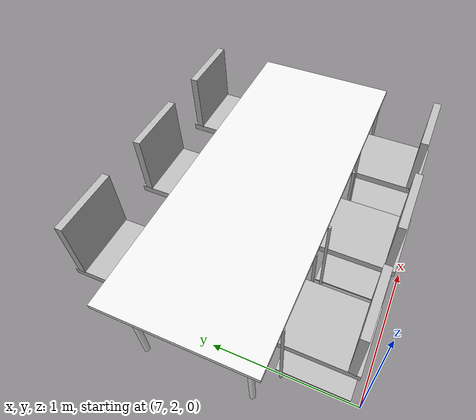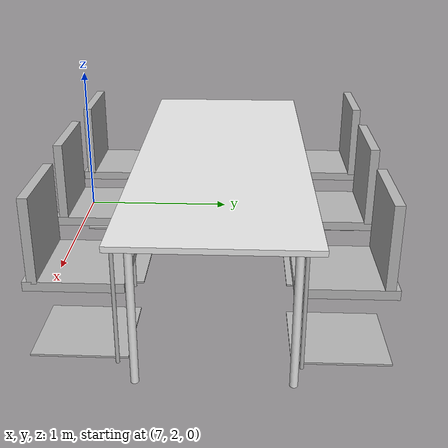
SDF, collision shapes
<sdf version="1.6">
 <model name="erica">
  <model name="table1_chair_clone_0">
   <model name="h_chair">
    <link name="link_0">
     <inertial>
      <mass>1</mass>
      <inertia>
       <ixx>0.166667</ixx>
       <ixy>0</ixy>
       <ixz>0</ixz>
       <iyy>0.166667</iyy>
       <iyz>0</iyz>
       <izz>0.166667</izz>
      </inertia>
     </inertial>
     <visual name="visual">
      <geometry>
       <mesh><uri>model://erica/elements/h_chair/meshes/chair.dae</uri><scale>1 1 1</scale></mesh>
      </geometry>
     </visual>
     <collision name="collision_4">
      <pose>0 0 0.41 0 -0 0</pose>
      <geometry><box><size>0.5 0.45 0.05</size></box></geometry>
      <surface>
       <friction>
        <ode><mu>1</mu><mu2>1</mu2><fdir1>0 0 0</fdir1><slip1>0</slip1><slip2>0</slip2></ode>
        <torsional>
         <coefficient>1</coefficient>
         <patch_radius>0</patch_radius>
         <surface_radius>0</surface_radius>
         <use_patch_radius>1</use_patch_radius>
         <ode><slip>0</slip></ode>
        </torsional>
       </friction>
       <bounce><restitution_coefficient>0</restitution_coefficient><threshold>1e+06</threshold></bounce>
       <contact>
        <collide_without_contact>0</collide_without_contact>
        <collide_without_contact_bitmask>1</collide_without_contact_bitmask>
        <collide_bitmask>1</collide_bitmask>
        <ode>
         <soft_cfm>0</soft_cfm>
         <soft_erp>0.2</soft_erp>
         <kp>1e+13</kp>
         <kd>1</kd>
         <max_vel>0.01</max_vel>
         <min_depth>0</min_depth>
        </ode>
        <bullet>
         <split_impulse>1</split_impulse>
         <split_impulse_penetration_threshold>-0.01</split_impulse_penetration_threshold>
         <soft_cfm>0</soft_cfm>
         <soft_erp>0.2</soft_erp>
         <kp>1e+13</kp>
         <kd>1</kd>
        </bullet>
       </contact>
      </surface>
     </collision>
     <collision name="collision_3">
      <pose>0 0 0.01 0 -0 0</pose>
      <geometry><box><size>0.5 0.45 0.01</size></box></geometry>
      <surface>
       <friction>
        <ode><mu>1</mu><mu2>1</mu2><fdir1>0 0 0</fdir1><slip1>0</slip1><slip2>0</slip2></ode>
        <torsional>
         <coefficient>1</coefficient>
         <patch_radius>0</patch_radius>
         <surface_radius>0</surface_radius>
         <use_patch_radius>1</use_patch_radius>
         <ode><slip>0</slip></ode>
        </torsional>
       </friction>
       <bounce><restitution_coefficient>0</restitution_coefficient><threshold>1e+06</threshold></bounce>
       <contact>
        <collide_without_contact>0</collide_without_contact>
        <collide_without_contact_bitmask>1</collide_without_contact_bitmask>
        <collide_bitmask>1</collide_bitmask>
        <ode>
         <soft_cfm>0</soft_cfm>
         <soft_erp>0.2</soft_erp>
         <kp>1e+13</kp>
         <kd>1</kd>
         <max_vel>0.01</max_vel>
         <min_depth>0</min_depth>
        </ode>
        <bullet>
         <split_impulse>1</split_impulse>
         <split_impulse_penetration_threshold>-0.01</split_impulse_penetration_threshold>
         <soft_cfm>0</soft_cfm>
         <soft_erp>0.2</soft_erp>
         <kp>1e+13</kp>
         <kd>1</kd>
        </bullet>
       </contact>
      </surface>
     </collision>
     <collision name="collision_5">
      <pose>-0.2 0 0.65 0 -0 0</pose>
      <geometry><box><size>0.05 0.45 0.45</size></box></geometry>
      <surface>
       <friction>
        <ode><mu>1</mu><mu2>1</mu2><fdir1>0 0 0</fdir1><slip1>0</slip1><slip2>0</slip2></ode>
        <torsional>
         <coefficient>1</coefficient>
         <patch_radius>0</patch_radius>
         <surface_radius>0</surface_radius>
         <use_patch_radius>1</use_patch_radius>
         <ode><slip>0</slip></ode>
        </torsional>
       </friction>
       <bounce><restitution_coefficient>0</restitution_coefficient><threshold>1e+06</threshold></bounce>
       <contact>
        <collide_without_contact>0</collide_without_contact>
        <collide_without_contact_bitmask>1</collide_without_contact_bitmask>
        <collide_bitmask>1</collide_bitmask>
        <ode>
         <soft_cfm>0</soft_cfm>
         <soft_erp>0.2</soft_erp>
         <kp>1e+13</kp>
         <kd>1</kd>
         <max_vel>0.01</max_vel>
         <min_depth>0</min_depth>
        </ode>
        <bullet>
         <split_impulse>1</split_impulse>
         <split_impulse_penetration_threshold>-0.01</split_impulse_penetration_threshold>
         <soft_cfm>0</soft_cfm>
         <soft_erp>0.2</soft_erp>
         <kp>1e+13</kp>
         <kd>1</kd>
        </bullet>
       </contact>
      </surface>
     </collision>
     <collision name="collision_6">
      <pose>0.2 -0.25 0.35 0 -0 0</pose>
      <geometry><cylinder><radius>0.01</radius><length>0.7</length></cylinder></geometry>
      <surface>
       <friction>
        <ode><mu>1</mu><mu2>1</mu2><fdir1>0 0 0</fdir1><slip1>0</slip1><slip2>0</slip2></ode>
        <torsional>
         <coefficient>1</coefficient>
         <patch_radius>0</patch_radius>
         <surface_radius>0</surface_radius>
         <use_patch_radius>1</use_patch_radius>
         <ode><slip>0</slip></ode>
        </torsional>
       </friction>
       <bounce><restitution_coefficient>0</restitution_coefficient><threshold>1e+06</threshold></bounce>
       <contact>
        <collide_without_contact>0</collide_without_contact>
        <collide_without_contact_bitmask>1</collide_without_contact_bitmask>
        <collide_bitmask>1</collide_bitmask>
        <ode>
         <soft_cfm>0</soft_cfm>
         <soft_erp>0.2</soft_erp>
         <kp>1e+13</kp>
         <kd>1</kd>
         <max_vel>0.01</max_vel>
         <min_depth>0</min_depth>
        </ode>
        <bullet>
         <split_impulse>1</split_impulse>
         <split_impulse_penetration_threshold>-0.01</split_impulse_penetration_threshold>
         <soft_cfm>0</soft_cfm>
         <soft_erp>0.2</soft_erp>
         <kp>1e+13</kp>
         <kd>1</kd>
        </bullet>
       </contact>
      </surface>
     </collision>
     <collision name="collision_7">
      <pose>0.2 0.25 0.35 0 -0 0</pose>
      <geometry><cylinder><radius>0.01</radius><length>0.7</length></cylinder></geometry>
      <surface>
       <friction>
        <ode><mu>1</mu><mu2>1</mu2><fdir1>0 0 0</fdir1><slip1>0</slip1><slip2>0</slip2></ode>
        <torsional>
         <coefficient>1</coefficient>
         <patch_radius>0</patch_radius>
         <surface_radius>0</surface_radius>
         <use_patch_radius>1</use_patch_radius>
         <ode><slip>0</slip></ode>
        </torsional>
       </friction>
       <bounce><restitution_coefficient>0</restitution_coefficient><threshold>1e+06</threshold></bounce>
       <contact>
        <collide_without_contact>0</collide_without_contact>
        <collide_without_contact_bitmask>1</collide_without_contact_bitmask>
        <collide_bitmask>1</collide_bitmask>
        <ode>
         <soft_cfm>0</soft_cfm>
         <soft_erp>0.2</soft_erp>
         <kp>1e+13</kp>
         <kd>1</kd>
         <max_vel>0.01</max_vel>
         <min_depth>0</min_depth>
        </ode>
        <bullet>
         <split_impulse>1</split_impulse>
         <split_impulse_penetration_threshold>-0.01</split_impulse_penetration_threshold>
         <soft_cfm>0</soft_cfm>
         <soft_erp>0.2</soft_erp>
         <kp>1e+13</kp>
         <kd>1</kd>
        </bullet>
       </contact>
      </surface>
     </collision>
    </link>
    <static>1</static>
    <pose>-0.65015 0.677818 0 0 -0 0</pose>
   </model>
   <model name="h_chair_clone">
    <link name="link_0">
     <inertial>
      <mass>1</mass>
      <inertia>
       <ixx>0.166667</ixx>
       <ixy>0</ixy>
       <ixz>0</ixz>
       <iyy>0.166667</iyy>
       <iyz>0</iyz>
       <izz>0.166667</izz>
      </inertia>
     </inertial>
     <visual name="visual">
      <geometry>
       <mesh><uri>model://erica/elements/h_chair/meshes/chair.dae</uri><scale>1 1 1</scale></mesh>
      </geometry>
     </visual>
     <collision name="collision_4">
      <pose>0 0 0.41 0 -0 0</pose>
      <geometry><box><size>0.5 0.45 0.05</size></box></geometry>
      <surface>
       <friction>
        <ode><mu>1</mu><mu2>1</mu2><fdir1>0 0 0</fdir1><slip1>0</slip1><slip2>0</slip2></ode>
        <torsional>
         <coefficient>1</coefficient>
         <patch_radius>0</patch_radius>
         <surface_radius>0</surface_radius>
         <use_patch_radius>1</use_patch_radius>
         <ode><slip>0</slip></ode>
        </torsional>
       </friction>
       <bounce><restitution_coefficient>0</restitution_coefficient><threshold>1e+06</threshold></bounce>
       <contact>
        <collide_without_contact>0</collide_without_contact>
        <collide_without_contact_bitmask>1</collide_without_contact_bitmask>
        <collide_bitmask>1</collide_bitmask>
        <ode>
         <soft_cfm>0</soft_cfm>
         <soft_erp>0.2</soft_erp>
         <kp>1e+13</kp>
         <kd>1</kd>
         <max_vel>0.01</max_vel>
         <min_depth>0</min_depth>
        </ode>
        <bullet>
         <split_impulse>1</split_impulse>
         <split_impulse_penetration_threshold>-0.01</split_impulse_penetration_threshold>
         <soft_cfm>0</soft_cfm>
         <soft_erp>0.2</soft_erp>
         <kp>1e+13</kp>
         <kd>1</kd>
        </bullet>
       </contact>
      </surface>
     </collision>
     <collision name="collision_3">
      <pose>0 0 0.01 0 -0 0</pose>
      <geometry><box><size>0.5 0.45 0.01</size></box></geometry>
      <surface>
       <friction>
        <ode><mu>1</mu><mu2>1</mu2><fdir1>0 0 0</fdir1><slip1>0</slip1><slip2>0</slip2></ode>
        <torsional>
         <coefficient>1</coefficient>
         <patch_radius>0</patch_radius>
         <surface_radius>0</surface_radius>
         <use_patch_radius>1</use_patch_radius>
         <ode><slip>0</slip></ode>
        </torsional>
       </friction>
       <bounce><restitution_coefficient>0</restitution_coefficient><threshold>1e+06</threshold></bounce>
       <contact>
        <collide_without_contact>0</collide_without_contact>
        <collide_without_contact_bitmask>1</collide_without_contact_bitmask>
        <collide_bitmask>1</collide_bitmask>
        <ode>
         <soft_cfm>0</soft_cfm>
         <soft_erp>0.2</soft_erp>
         <kp>1e+13</kp>
         <kd>1</kd>
         <max_vel>0.01</max_vel>
         <min_depth>0</min_depth>
        </ode>
        <bullet>
         <split_impulse>1</split_impulse>
         <split_impulse_penetration_threshold>-0.01</split_impulse_penetration_threshold>
         <soft_cfm>0</soft_cfm>
         <soft_erp>0.2</soft_erp>
         <kp>1e+13</kp>
         <kd>1</kd>
        </bullet>
       </contact>
      </surface>
     </collision>
     <collision name="collision_5">
      <pose>-0.2 0 0.65 0 -0 0</pose>
      <geometry><box><size>0.05 0.45 0.45</size></box></geometry>
      <surface>
       <friction>
        <ode><mu>1</mu><mu2>1</mu2><fdir1>0 0 0</fdir1><slip1>0</slip1><slip2>0</slip2></ode>
        <torsional>
         <coefficient>1</coefficient>
         <patch_radius>0</patch_radius>
         <surface_radius>0</surface_radius>
         <use_patch_radius>1</use_patch_radius>
         <ode><slip>0</slip></ode>
        </torsional>
       </friction>
       <bounce><restitution_coefficient>0</restitution_coefficient><threshold>1e+06</threshold></bounce>
       <contact>
        <collide_without_contact>0</collide_without_contact>
        <collide_without_contact_bitmask>1</collide_without_contact_bitmask>
        <collide_bitmask>1</collide_bitmask>
        <ode>
         <soft_cfm>0</soft_cfm>
         <soft_erp>0.2</soft_erp>
         <kp>1e+13</kp>
         <kd>1</kd>
         <max_vel>0.01</max_vel>
         <min_depth>0</min_depth>
        </ode>
        <bullet>
         <split_impulse>1</split_impulse>
         <split_impulse_penetration_threshold>-0.01</split_impulse_penetration_threshold>
         <soft_cfm>0</soft_cfm>
         <soft_erp>0.2</soft_erp>
         <kp>1e+13</kp>
         <kd>1</kd>
        </bullet>
       </contact>
      </surface>
     </collision>
     <collision name="collision_6">
      <pose>0.2 -0.25 0.35 0 -0 0</pose>
      <geometry><cylinder><radius>0.01</radius><length>0.7</length></cylinder></geometry>
      <surface>
       <friction>
        <ode><mu>1</mu><mu2>1</mu2><fdir1>0 0 0</fdir1><slip1>0</slip1><slip2>0</slip2></ode>
        <torsional>
         <coefficient>1</coefficient>
         <patch_radius>0</patch_radius>
         <surface_radius>0</surface_radius>
         <use_patch_radius>1</use_patch_radius>
         <ode><slip>0</slip></ode>
        </torsional>
       </friction>
       <bounce><restitution_coefficient>0</restitution_coefficient><threshold>1e+06</threshold></bounce>
       <contact>
        <collide_without_contact>0</collide_without_contact>
        <collide_without_contact_bitmask>1</collide_without_contact_bitmask>
        <collide_bitmask>1</collide_bitmask>
        <ode>
         <soft_cfm>0</soft_cfm>
         <soft_erp>0.2</soft_erp>
         <kp>1e+13</kp>
         <kd>1</kd>
         <max_vel>0.01</max_vel>
         <min_depth>0</min_depth>
        </ode>
        <bullet>
         <split_impulse>1</split_impulse>
         <split_impulse_penetration_threshold>-0.01</split_impulse_penetration_threshold>
         <soft_cfm>0</soft_cfm>
         <soft_erp>0.2</soft_erp>
         <kp>1e+13</kp>
         <kd>1</kd>
        </bullet>
       </contact>
      </surface>
     </collision>
     <collision name="collision_7">
      <pose>0.2 0.25 0.35 0 -0 0</pose>
      <geometry><cylinder><radius>0.01</radius><length>0.7</length></cylinder></geometry>
      <surface>
       <friction>
        <ode><mu>1</mu><mu2>1</mu2><fdir1>0 0 0</fdir1><slip1>0</slip1><slip2>0</slip2></ode>
        <torsional>
         <coefficient>1</coefficient>
         <patch_radius>0</patch_radius>
         <surface_radius>0</surface_radius>
         <use_patch_radius>1</use_patch_radius>
         <ode><slip>0</slip></ode>
        </torsional>
       </friction>
       <bounce><restitution_coefficient>0</restitution_coefficient><threshold>1e+06</threshold></bounce>
       <contact>
        <collide_without_contact>0</collide_without_contact>
        <collide_without_contact_bitmask>1</collide_without_contact_bitmask>
        <collide_bitmask>1</collide_bitmask>
        <ode>
         <soft_cfm>0</soft_cfm>
         <soft_erp>0.2</soft_erp>
         <kp>1e+13</kp>
         <kd>1</kd>
         <max_vel>0.01</max_vel>
         <min_depth>0</min_depth>
        </ode>
        <bullet>
         <split_impulse>1</split_impulse>
         <split_impulse_penetration_threshold>-0.01</split_impulse_penetration_threshold>
         <soft_cfm>0</soft_cfm>
         <soft_erp>0.2</soft_erp>
         <kp>1e+13</kp>
         <kd>1</kd>
        </bullet>
       </contact>
      </surface>
     </collision>
    </link>
    <static>1</static>
    <pose>-0.668032 -0.060178 0 0 -0 0</pose>
   </model>
   <model name="h_chair_clone_0">
    <link name="link_0">
     <inertial>
      <mass>1</mass>
      <inertia>
       <ixx>0.166667</ixx>
       <ixy>0</ixy>
       <ixz>0</ixz>
       <iyy>0.166667</iyy>
       <iyz>0</iyz>
       <izz>0.166667</izz>
      </inertia>
     </inertial>
     <visual name="visual">
      <geometry>
       <mesh><uri>model://erica/elements/h_chair/meshes/chair.dae</uri><scale>1 1 1</scale></mesh>
      </geometry>
     </visual>
     <collision name="collision_4">
      <pose>0 0 0.41 0 -0 0</pose>
      <geometry><box><size>0.5 0.45 0.05</size></box></geometry>
      <surface>
       <friction>
        <ode><mu>1</mu><mu2>1</mu2><fdir1>0 0 0</fdir1><slip1>0</slip1><slip2>0</slip2></ode>
        <torsional>
         <coefficient>1</coefficient>
         <patch_radius>0</patch_radius>
         <surface_radius>0</surface_radius>
         <use_patch_radius>1</use_patch_radius>
         <ode><slip>0</slip></ode>
        </torsional>
       </friction>
       <bounce><restitution_coefficient>0</restitution_coefficient><threshold>1e+06</threshold></bounce>
       <contact>
        <collide_without_contact>0</collide_without_contact>
        <collide_without_contact_bitmask>1</collide_without_contact_bitmask>
        <collide_bitmask>1</collide_bitmask>
        <ode>
         <soft_cfm>0</soft_cfm>
         <soft_erp>0.2</soft_erp>
         <kp>1e+13</kp>
         <kd>1</kd>
         <max_vel>0.01</max_vel>
         <min_depth>0</min_depth>
        </ode>
        <bullet>
         <split_impulse>1</split_impulse>
         <split_impulse_penetration_threshold>-0.01</split_impulse_penetration_threshold>
         <soft_cfm>0</soft_cfm>
         <soft_erp>0.2</soft_erp>
         <kp>1e+13</kp>
         <kd>1</kd>
        </bullet>
       </contact>
      </surface>
     </collision>
     <collision name="collision_3">
      <pose>0 0 0.01 0 -0 0</pose>
      <geometry><box><size>0.5 0.45 0.01</size></box></geometry>
      <surface>
       <friction>
        <ode><mu>1</mu><mu2>1</mu2><fdir1>0 0 0</fdir1><slip1>0</slip1><slip2>0</slip2></ode>
        <torsional>
         <coefficient>1</coefficient>
         <patch_radius>0</patch_radius>
         <surface_radius>0</surface_radius>
         <use_patch_radius>1</use_patch_radius>
         <ode><slip>0</slip></ode>
        </torsional>
       </friction>
       <bounce><restitution_coefficient>0</restitution_coefficient><threshold>1e+06</threshold></bounce>
       <contact>
        <collide_without_contact>0</collide_without_contact>
        <collide_without_contact_bitmask>1</collide_without_contact_bitmask>
        <collide_bitmask>1</collide_bitmask>
        <ode>
         <soft_cfm>0</soft_cfm>
         <soft_erp>0.2</soft_erp>
         <kp>1e+13</kp>
         <kd>1</kd>
         <max_vel>0.01</max_vel>
         <min_depth>0</min_depth>
        </ode>
        <bullet>
         <split_impulse>1</split_impulse>
         <split_impulse_penetration_threshold>-0.01</split_impulse_penetration_threshold>
         <soft_cfm>0</soft_cfm>
         <soft_erp>0.2</soft_erp>
         <kp>1e+13</kp>
         <kd>1</kd>
        </bullet>
       </contact>
      </surface>
     </collision>
     <collision name="collision_5">
      <pose>-0.2 0 0.65 0 -0 0</pose>
      <geometry><box><size>0.05 0.45 0.45</size></box></geometry>
      <surface>
       <friction>
        <ode><mu>1</mu><mu2>1</mu2><fdir1>0 0 0</fdir1><slip1>0</slip1><slip2>0</slip2></ode>
        <torsional>
         <coefficient>1</coefficient>
         <patch_radius>0</patch_radius>
         <surface_radius>0</surface_radius>
         <use_patch_radius>1</use_patch_radius>
         <ode><slip>0</slip></ode>
        </torsional>
       </friction>
       <bounce><restitution_coefficient>0</restitution_coefficient><threshold>1e+06</threshold></bounce>
       <contact>
        <collide_without_contact>0</collide_without_contact>
        <collide_without_contact_bitmask>1</collide_without_contact_bitmask>
        <collide_bitmask>1</collide_bitmask>
        <ode>
         <soft_cfm>0</soft_cfm>
         <soft_erp>0.2</soft_erp>
         <kp>1e+13</kp>
         <kd>1</kd>
         <max_vel>0.01</max_vel>
         <min_depth>0</min_depth>
        </ode>
        <bullet>
         <split_impulse>1</split_impulse>
         <split_impulse_penetration_threshold>-0.01</split_impulse_penetration_threshold>
         <soft_cfm>0</soft_cfm>
         <soft_erp>0.2</soft_erp>
         <kp>1e+13</kp>
         <kd>1</kd>
        </bullet>
       </contact>
      </surface>
     </collision>
     <collision name="collision_6">
      <pose>0.2 -0.25 0.35 0 -0 0</pose>
      <geometry><cylinder><radius>0.01</radius><length>0.7</length></cylinder></geometry>
      <surface>
       <friction>
        <ode><mu>1</mu><mu2>1</mu2><fdir1>0 0 0</fdir1><slip1>0</slip1><slip2>0</slip2></ode>
        <torsional>
         <coefficient>1</coefficient>
         <patch_radius>0</patch_radius>
         <surface_radius>0</surface_radius>
         <use_patch_radius>1</use_patch_radius>
         <ode><slip>0</slip></ode>
        </torsional>
       </friction>
       <bounce><restitution_coefficient>0</restitution_coefficient><threshold>1e+06</threshold></bounce>
       <contact>
        <collide_without_contact>0</collide_without_contact>
        <collide_without_contact_bitmask>1</collide_without_contact_bitmask>
        <collide_bitmask>1</collide_bitmask>
        <ode>
         <soft_cfm>0</soft_cfm>
         <soft_erp>0.2</soft_erp>
         <kp>1e+13</kp>
         <kd>1</kd>
         <max_vel>0.01</max_vel>
         <min_depth>0</min_depth>
        </ode>
        <bullet>
         <split_impulse>1</split_impulse>
         <split_impulse_penetration_threshold>-0.01</split_impulse_penetration_threshold>
         <soft_cfm>0</soft_cfm>
         <soft_erp>0.2</soft_erp>
         <kp>1e+13</kp>
         <kd>1</kd>
        </bullet>
       </contact>
      </surface>
     </collision>
     <collision name="collision_7">
      <pose>0.2 0.25 0.35 0 -0 0</pose>
      <geometry><cylinder><radius>0.01</radius><length>0.7</length></cylinder></geometry>
      <surface>
       <friction>
        <ode><mu>1</mu><mu2>1</mu2><fdir1>0 0 0</fdir1><slip1>0</slip1><slip2>0</slip2></ode>
        <torsional>
         <coefficient>1</coefficient>
         <patch_radius>0</patch_radius>
         <surface_radius>0</surface_radius>
         <use_patch_radius>1</use_patch_radius>
         <ode><slip>0</slip></ode>
        </torsional>
       </friction>
       <bounce><restitution_coefficient>0</restitution_coefficient><threshold>1e+06</threshold></bounce>
       <contact>
        <collide_without_contact>0</collide_without_contact>
        <collide_without_contact_bitmask>1</collide_without_contact_bitmask>
        <collide_bitmask>1</collide_bitmask>
        <ode>
         <soft_cfm>0</soft_cfm>
         <soft_erp>0.2</soft_erp>
         <kp>1e+13</kp>
         <kd>1</kd>
         <max_vel>0.01</max_vel>
         <min_depth>0</min_depth>
        </ode>
        <bullet>
         <split_impulse>1</split_impulse>
         <split_impulse_penetration_threshold>-0.01</split_impulse_penetration_threshold>
         <soft_cfm>0</soft_cfm>
         <soft_erp>0.2</soft_erp>
         <kp>1e+13</kp>
         <kd>1</kd>
        </bullet>
       </contact>
      </surface>
     </collision>
    </link>
    <static>1</static>
    <pose>-0.679941 -0.822301 0 0 -0 0</pose>
   </model>
   <model name="h_chair_clone_1">
    <link name="link_0">
     <inertial>
      <mass>1</mass>
      <inertia>
       <ixx>0.166667</ixx>
       <ixy>0</ixy>
       <ixz>0</ixz>
       <iyy>0.166667</iyy>
       <iyz>0</iyz>
       <izz>0.166667</izz>
      </inertia>
     </inertial>
     <visual name="visual">
      <geometry>
       <mesh><uri>model://erica/elements/h_chair/meshes/chair.dae</uri><scale>1 1 1</scale></mesh>
      </geometry>
     </visual>
     <collision name="collision_4">
      <pose>0 0 0.41 0 -0 0</pose>
      <geometry><box><size>0.5 0.45 0.05</size></box></geometry>
      <surface>
       <friction>
        <ode><mu>1</mu><mu2>1</mu2><fdir1>0 0 0</fdir1><slip1>0</slip1><slip2>0</slip2></ode>
        <torsional>
         <coefficient>1</coefficient>
         <patch_radius>0</patch_radius>
         <surface_radius>0</surface_radius>
         <use_patch_radius>1</use_patch_radius>
         <ode><slip>0</slip></ode>
        </torsional>
       </friction>
       <bounce><restitution_coefficient>0</restitution_coefficient><threshold>1e+06</threshold></bounce>
       <contact>
        <collide_without_contact>0</collide_without_contact>
        <collide_without_contact_bitmask>1</collide_without_contact_bitmask>
        <collide_bitmask>1</collide_bitmask>
        <ode>
         <soft_cfm>0</soft_cfm>
         <soft_erp>0.2</soft_erp>
         <kp>1e+13</kp>
         <kd>1</kd>
         <max_vel>0.01</max_vel>
         <min_depth>0</min_depth>
        </ode>
        <bullet>
         <split_impulse>1</split_impulse>
         <split_impulse_penetration_threshold>-0.01</split_impulse_penetration_threshold>
         <soft_cfm>0</soft_cfm>
         <soft_erp>0.2</soft_erp>
         <kp>1e+13</kp>
         <kd>1</kd>
        </bullet>
       </contact>
      </surface>
     </collision>
     <collision name="collision_3">
      <pose>0 0 0.01 0 -0 0</pose>
      <geometry><box><size>0.5 0.45 0.01</size></box></geometry>
      <surface>
       <friction>
        <ode><mu>1</mu><mu2>1</mu2><fdir1>0 0 0</fdir1><slip1>0</slip1><slip2>0</slip2></ode>
        <torsional>
         <coefficient>1</coefficient>
         <patch_radius>0</patch_radius>
         <surface_radius>0</surface_radius>
         <use_patch_radius>1</use_patch_radius>
         <ode><slip>0</slip></ode>
        </torsional>
       </friction>
       <bounce><restitution_coefficient>0</restitution_coefficient><threshold>1e+06</threshold></bounce>
       <contact>
        <collide_without_contact>0</collide_without_contact>
        <collide_without_contact_bitmask>1</collide_without_contact_bitmask>
        <collide_bitmask>1</collide_bitmask>
        <ode>
         <soft_cfm>0</soft_cfm>
         <soft_erp>0.2</soft_erp>
         <kp>1e+13</kp>
         <kd>1</kd>
         <max_vel>0.01</max_vel>
         <min_depth>0</min_depth>
        </ode>
        <bullet>
         <split_impulse>1</split_impulse>
         <split_impulse_penetration_threshold>-0.01</split_impulse_penetration_threshold>
         <soft_cfm>0</soft_cfm>
         <soft_erp>0.2</soft_erp>
         <kp>1e+13</kp>
         <kd>1</kd>
        </bullet>
       </contact>
      </surface>
     </collision>
     <collision name="collision_5">
      <pose>-0.2 0 0.65 0 -0 0</pose>
      <geometry><box><size>0.05 0.45 0.45</size></box></geometry>
      <surface>
       <friction>
        <ode><mu>1</mu><mu2>1</mu2><fdir1>0 0 0</fdir1><slip1>0</slip1><slip2>0</slip2></ode>
        <torsional>
         <coefficient>1</coefficient>
         <patch_radius>0</patch_radius>
         <surface_radius>0</surface_radius>
         <use_patch_radius>1</use_patch_radius>
         <ode><slip>0</slip></ode>
        </torsional>
       </friction>
       <bounce><restitution_coefficient>0</restitution_coefficient><threshold>1e+06</threshold></bounce>
       <contact>
        <collide_without_contact>0</collide_without_contact>
        <collide_without_contact_bitmask>1</collide_without_contact_bitmask>
        <collide_bitmask>1</collide_bitmask>
        <ode>
         <soft_cfm>0</soft_cfm>
         <soft_erp>0.2</soft_erp>
         <kp>1e+13</kp>
         <kd>1</kd>
         <max_vel>0.01</max_vel>
         <min_depth>0</min_depth>
        </ode>
        <bullet>
         <split_impulse>1</split_impulse>
         <split_impulse_penetration_threshold>-0.01</split_impulse_penetration_threshold>
         <soft_cfm>0</soft_cfm>
         <soft_erp>0.2</soft_erp>
         <kp>1e+13</kp>
         <kd>1</kd>
        </bullet>
       </contact>
      </surface>
     </collision>
     <collision name="collision_6">
      <pose>0.2 -0.25 0.35 0 -0 0</pose>
      <geometry><cylinder><radius>0.01</radius><length>0.7</length></cylinder></geometry>
      <surface>
       <friction>
        <ode><mu>1</mu><mu2>1</mu2><fdir1>0 0 0</fdir1><slip1>0</slip1><slip2>0</slip2></ode>
        <torsional>
         <coefficient>1</coefficient>
         <patch_radius>0</patch_radius>
         <surface_radius>0</surface_radius>
         <use_patch_radius>1</use_patch_radius>
         <ode><slip>0</slip></ode>
        </torsional>
       </friction>
       <bounce><restitution_coefficient>0</restitution_coefficient><threshold>1e+06</threshold></bounce>
       <contact>
        <collide_without_contact>0</collide_without_contact>
        <collide_without_contact_bitmask>1</collide_without_contact_bitmask>
        <collide_bitmask>1</collide_bitmask>
        <ode>
         <soft_cfm>0</soft_cfm>
         <soft_erp>0.2</soft_erp>
         <kp>1e+13</kp>
         <kd>1</kd>
         <max_vel>0.01</max_vel>
         <min_depth>0</min_depth>
        </ode>
        <bullet>
         <split_impulse>1</split_impulse>
         <split_impulse_penetration_threshold>-0.01</split_impulse_penetration_threshold>
         <soft_cfm>0</soft_cfm>
         <soft_erp>0.2</soft_erp>
         <kp>1e+13</kp>
         <kd>1</kd>
        </bullet>
       </contact>
      </surface>
     </collision>
     <collision name="collision_7">
      <pose>0.2 0.25 0.35 0 -0 0</pose>
      <geometry><cylinder><radius>0.01</radius><length>0.7</length></cylinder></geometry>
      <surface>
       <friction>
        <ode><mu>1</mu><mu2>1</mu2><fdir1>0 0 0</fdir1><slip1>0</slip1><slip2>0</slip2></ode>
        <torsional>
         <coefficient>1</coefficient>
         <patch_radius>0</patch_radius>
         <surface_radius>0</surface_radius>
         <use_patch_radius>1</use_patch_radius>
         <ode><slip>0</slip></ode>
        </torsional>
       </friction>
       <bounce><restitution_coefficient>0</restitution_coefficient><threshold>1e+06</threshold></bounce>
       <contact>
        <collide_without_contact>0</collide_without_contact>
        <collide_without_contact_bitmask>1</collide_without_contact_bitmask>
        <collide_bitmask>1</collide_bitmask>
        <ode>
         <soft_cfm>0</soft_cfm>
         <soft_erp>0.2</soft_erp>
         <kp>1e+13</kp>
         <kd>1</kd>
         <max_vel>0.01</max_vel>
         <min_depth>0</min_depth>
        </ode>
        <bullet>
         <split_impulse>1</split_impulse>
         <split_impulse_penetration_threshold>-0.01</split_impulse_penetration_threshold>
         <soft_cfm>0</soft_cfm>
         <soft_erp>0.2</soft_erp>
         <kp>1e+13</kp>
         <kd>1</kd>
        </bullet>
       </contact>
      </surface>
     </collision>
    </link>
    <static>1</static>
    <pose>0.664034 0.665185 0 0 -0 3.13853</pose>
   </model>
   <model name="h_chair_clone_1_clone">
    <link name="link_0">
     <inertial>
      <mass>1</mass>
      <inertia>
       <ixx>0.166667</ixx>
       <ixy>0</ixy>
       <ixz>0</ixz>
       <iyy>0.166667</iyy>
       <iyz>0</iyz>
       <izz>0.166667</izz>
      </inertia>
     </inertial>
     <visual name="visual">
      <geometry>
       <mesh><uri>model://erica/elements/h_chair/meshes/chair.dae</uri><scale>1 1 1</scale></mesh>
      </geometry>
     </visual>
     <collision name="collision_4">
      <pose>0 0 0.41 0 -0 0</pose>
      <geometry><box><size>0.5 0.45 0.05</size></box></geometry>
      <surface>
       <friction>
        <ode><mu>1</mu><mu2>1</mu2><fdir1>0 0 0</fdir1><slip1>0</slip1><slip2>0</slip2></ode>
        <torsional>
         <coefficient>1</coefficient>
         <patch_radius>0</patch_radius>
         <surface_radius>0</surface_radius>
         <use_patch_radius>1</use_patch_radius>
         <ode><slip>0</slip></ode>
        </torsional>
       </friction>
       <bounce><restitution_coefficient>0</restitution_coefficient><threshold>1e+06</threshold></bounce>
       <contact>
        <collide_without_contact>0</collide_without_contact>
        <collide_without_contact_bitmask>1</collide_without_contact_bitmask>
        <collide_bitmask>1</collide_bitmask>
        <ode>
         <soft_cfm>0</soft_cfm>
         <soft_erp>0.2</soft_erp>
         <kp>1e+13</kp>
         <kd>1</kd>
         <max_vel>0.01</max_vel>
         <min_depth>0</min_depth>
        </ode>
        <bullet>
         <split_impulse>1</split_impulse>
         <split_impulse_penetration_threshold>-0.01</split_impulse_penetration_threshold>
         <soft_cfm>0</soft_cfm>
         <soft_erp>0.2</soft_erp>
         <kp>1e+13</kp>
         <kd>1</kd>
        </bullet>
       </contact>
      </surface>
     </collision>
     <collision name="collision_3">
      <pose>0 0 0.01 0 -0 0</pose>
      <geometry><box><size>0.5 0.45 0.01</size></box></geometry>
      <surface>
       <friction>
        <ode><mu>1</mu><mu2>1</mu2><fdir1>0 0 0</fdir1><slip1>0</slip1><slip2>0</slip2></ode>
        <torsional>
         <coefficient>1</coefficient>
         <patch_radius>0</patch_radius>
         <surface_radius>0</surface_radius>
         <use_patch_radius>1</use_patch_radius>
         <ode><slip>0</slip></ode>
        </torsional>
       </friction>
       <bounce><restitution_coefficient>0</restitution_coefficient><threshold>1e+06</threshold></bounce>
       <contact>
        <collide_without_contact>0</collide_without_contact>
        <collide_without_contact_bitmask>1</collide_without_contact_bitmask>
        <collide_bitmask>1</collide_bitmask>
        <ode>
         <soft_cfm>0</soft_cfm>
         <soft_erp>0.2</soft_erp>
         <kp>1e+13</kp>
         <kd>1</kd>
         <max_vel>0.01</max_vel>
         <min_depth>0</min_depth>
        </ode>
        <bullet>
         <split_impulse>1</split_impulse>
         <split_impulse_penetration_threshold>-0.01</split_impulse_penetration_threshold>
         <soft_cfm>0</soft_cfm>
         <soft_erp>0.2</soft_erp>
         <kp>1e+13</kp>
         <kd>1</kd>
        </bullet>
       </contact>
      </surface>
     </collision>
     <collision name="collision_5">
      <pose>-0.2 0 0.65 0 -0 0</pose>
      <geometry><box><size>0.05 0.45 0.45</size></box></geometry>
      <surface>
       <friction>
        <ode><mu>1</mu><mu2>1</mu2><fdir1>0 0 0</fdir1><slip1>0</slip1><slip2>0</slip2></ode>
        <torsional>
         <coefficient>1</coefficient>
         <patch_radius>0</patch_radius>
         <surface_radius>0</surface_radius>
         <use_patch_radius>1</use_patch_radius>
         <ode><slip>0</slip></ode>
        </torsional>
       </friction>
       <bounce><restitution_coefficient>0</restitution_coefficient><threshold>1e+06</threshold></bounce>
       <contact>
        <collide_without_contact>0</collide_without_contact>
        <collide_without_contact_bitmask>1</collide_without_contact_bitmask>
        <collide_bitmask>1</collide_bitmask>
        <ode>
         <soft_cfm>0</soft_cfm>
         <soft_erp>0.2</soft_erp>
         <kp>1e+13</kp>
         <kd>1</kd>
         <max_vel>0.01</max_vel>
         <min_depth>0</min_depth>
        </ode>
        <bullet>
         <split_impulse>1</split_impulse>
         <split_impulse_penetration_threshold>-0.01</split_impulse_penetration_threshold>
         <soft_cfm>0</soft_cfm>
         <soft_erp>0.2</soft_erp>
         <kp>1e+13</kp>
         <kd>1</kd>
        </bullet>
       </contact>
      </surface>
     </collision>
     <collision name="collision_6">
      <pose>0.2 -0.25 0.35 0 -0 0</pose>
      <geometry><cylinder><radius>0.01</radius><length>0.7</length></cylinder></geometry>
      <surface>
       <friction>
        <ode><mu>1</mu><mu2>1</mu2><fdir1>0 0 0</fdir1><slip1>0</slip1><slip2>0</slip2></ode>
        <torsional>
         <coefficient>1</coefficient>
         <patch_radius>0</patch_radius>
         <surface_radius>0</surface_radius>
         <use_patch_radius>1</use_patch_radius>
         <ode><slip>0</slip></ode>
        </torsional>
       </friction>
       <bounce><restitution_coefficient>0</restitution_coefficient><threshold>1e+06</threshold></bounce>
       <contact>
        <collide_without_contact>0</collide_without_contact>
        <collide_without_contact_bitmask>1</collide_without_contact_bitmask>
        <collide_bitmask>1</collide_bitmask>
        <ode>
         <soft_cfm>0</soft_cfm>
         <soft_erp>0.2</soft_erp>
         <kp>1e+13</kp>
         <kd>1</kd>
         <max_vel>0.01</max_vel>
         <min_depth>0</min_depth>
        </ode>
        <bullet>
         <split_impulse>1</split_impulse>
         <split_impulse_penetration_threshold>-0.01</split_impulse_penetration_threshold>
         <soft_cfm>0</soft_cfm>
         <soft_erp>0.2</soft_erp>
         <kp>1e+13</kp>
         <kd>1</kd>
        </bullet>
       </contact>
      </surface>
     </collision>
     <collision name="collision_7">
      <pose>0.2 0.25 0.35 0 -0 0</pose>
      <geometry><cylinder><radius>0.01</radius><length>0.7</length></cylinder></geometry>
      <surface>
       <friction>
        <ode><mu>1</mu><mu2>1</mu2><fdir1>0 0 0</fdir1><slip1>0</slip1><slip2>0</slip2></ode>
        <torsional>
         <coefficient>1</coefficient>
         <patch_radius>0</patch_radius>
         <surface_radius>0</surface_radius>
         <use_patch_radius>1</use_patch_radius>
         <ode><slip>0</slip></ode>
        </torsional>
       </friction>
       <bounce><restitution_coefficient>0</restitution_coefficient><threshold>1e+06</threshold></bounce>
       <contact>
        <collide_without_contact>0</collide_without_contact>
        <collide_without_contact_bitmask>1</collide_without_contact_bitmask>
        <collide_bitmask>1</collide_bitmask>
        <ode>
         <soft_cfm>0</soft_cfm>
         <soft_erp>0.2</soft_erp>
         <kp>1e+13</kp>
         <kd>1</kd>
         <max_vel>0.01</max_vel>
         <min_depth>0</min_depth>
        </ode>
        <bullet>
         <split_impulse>1</split_impulse>
         <split_impulse_penetration_threshold>-0.01</split_impulse_penetration_threshold>
         <soft_cfm>0</soft_cfm>
         <soft_erp>0.2</soft_erp>
         <kp>1e+13</kp>
         <kd>1</kd>
        </bullet>
       </contact>
      </surface>
     </collision>
    </link>
    <static>1</static>
    <pose>0.671484 -0.777358 0 0 -0 3.13853</pose>
   </model>
   <model name="h_chair_clone_1_clone_clone">
    <link name="link_0">
     <inertial>
      <mass>1</mass>
      <inertia>
       <ixx>0.166667</ixx>
       <ixy>0</ixy>
       <ixz>0</ixz>
       <iyy>0.166667</iyy>
       <iyz>0</iyz>
       <izz>0.166667</izz>
      </inertia>
     </inertial>
     <visual name="visual">
      <geometry>
       <mesh><uri>model://erica/elements/h_chair/meshes/chair.dae</uri><scale>1 1 1</scale></mesh>
      </geometry>
     </visual>
     <collision name="collision_4">
      <pose>0 0 0.41 0 -0 0</pose>
      <geometry><box><size>0.5 0.45 0.05</size></box></geometry>
      <surface>
       <friction>
        <ode><mu>1</mu><mu2>1</mu2><fdir1>0 0 0</fdir1><slip1>0</slip1><slip2>0</slip2></ode>
        <torsional>
         <coefficient>1</coefficient>
         <patch_radius>0</patch_radius>
         <surface_radius>0</surface_radius>
         <use_patch_radius>1</use_patch_radius>
         <ode><slip>0</slip></ode>
        </torsional>
       </friction>
       <bounce><restitution_coefficient>0</restitution_coefficient><threshold>1e+06</threshold></bounce>
       <contact>
        <collide_without_contact>0</collide_without_contact>
        <collide_without_contact_bitmask>1</collide_without_contact_bitmask>
        <collide_bitmask>1</collide_bitmask>
        <ode>
         <soft_cfm>0</soft_cfm>
         <soft_erp>0.2</soft_erp>
         <kp>1e+13</kp>
         <kd>1</kd>
         <max_vel>0.01</max_vel>
         <min_depth>0</min_depth>
        </ode>
        <bullet>
         <split_impulse>1</split_impulse>
         <split_impulse_penetration_threshold>-0.01</split_impulse_penetration_threshold>
         <soft_cfm>0</soft_cfm>
         <soft_erp>0.2</soft_erp>
         <kp>1e+13</kp>
         <kd>1</kd>
        </bullet>
       </contact>
      </surface>
     </collision>
     <collision name="collision_3">
      <pose>0 0 0.01 0 -0 0</pose>
      <geometry><box><size>0.5 0.45 0.01</size></box></geometry>
      <surface>
       <friction>
        <ode><mu>1</mu><mu2>1</mu2><fdir1>0 0 0</fdir1><slip1>0</slip1><slip2>0</slip2></ode>
        <torsional>
         <coefficient>1</coefficient>
         <patch_radius>0</patch_radius>
         <surface_radius>0</surface_radius>
         <use_patch_radius>1</use_patch_radius>
         <ode><slip>0</slip></ode>
        </torsional>
       </friction>
       <bounce><restitution_coefficient>0</restitution_coefficient><threshold>1e+06</threshold></bounce>
       <contact>
        <collide_without_contact>0</collide_without_contact>
        <collide_without_contact_bitmask>1</collide_without_contact_bitmask>
        <collide_bitmask>1</collide_bitmask>
        <ode>
         <soft_cfm>0</soft_cfm>
         <soft_erp>0.2</soft_erp>
         <kp>1e+13</kp>
         <kd>1</kd>
         <max_vel>0.01</max_vel>
         <min_depth>0</min_depth>
        </ode>
        <bullet>
         <split_impulse>1</split_impulse>
         <split_impulse_penetration_threshold>-0.01</split_impulse_penetration_threshold>
         <soft_cfm>0</soft_cfm>
         <soft_erp>0.2</soft_erp>
         <kp>1e+13</kp>
         <kd>1</kd>
        </bullet>
       </contact>
      </surface>
     </collision>
     <collision name="collision_5">
      <pose>-0.2 0 0.65 0 -0 0</pose>
      <geometry><box><size>0.05 0.45 0.45</size></box></geometry>
      <surface>
       <friction>
        <ode><mu>1</mu><mu2>1</mu2><fdir1>0 0 0</fdir1><slip1>0</slip1><slip2>0</slip2></ode>
        <torsional>
         <coefficient>1</coefficient>
         <patch_radius>0</patch_radius>
         <surface_radius>0</surface_radius>
         <use_patch_radius>1</use_patch_radius>
         <ode><slip>0</slip></ode>
        </torsional>
       </friction>
       <bounce><restitution_coefficient>0</restitution_coefficient><threshold>1e+06</threshold></bounce>
       <contact>
        <collide_without_contact>0</collide_without_contact>
        <collide_without_contact_bitmask>1</collide_without_contact_bitmask>
        <collide_bitmask>1</collide_bitmask>
        <ode>
         <soft_cfm>0</soft_cfm>
         <soft_erp>0.2</soft_erp>
         <kp>1e+13</kp>
         <kd>1</kd>
         <max_vel>0.01</max_vel>
         <min_depth>0</min_depth>
        </ode>
        <bullet>
         <split_impulse>1</split_impulse>
         <split_impulse_penetration_threshold>-0.01</split_impulse_penetration_threshold>
         <soft_cfm>0</soft_cfm>
         <soft_erp>0.2</soft_erp>
         <kp>1e+13</kp>
         <kd>1</kd>
        </bullet>
       </contact>
      </surface>
     </collision>
     <collision name="collision_6">
      <pose>0.2 -0.25 0.35 0 -0 0</pose>
      <geometry><cylinder><radius>0.01</radius><length>0.7</length></cylinder></geometry>
      <surface>
       <friction>
        <ode><mu>1</mu><mu2>1</mu2><fdir1>0 0 0</fdir1><slip1>0</slip1><slip2>0</slip2></ode>
        <torsional>
         <coefficient>1</coefficient>
         <patch_radius>0</patch_radius>
         <surface_radius>0</surface_radius>
         <use_patch_radius>1</use_patch_radius>
         <ode><slip>0</slip></ode>
        </torsional>
       </friction>
       <bounce><restitution_coefficient>0</restitution_coefficient><threshold>1e+06</threshold></bounce>
       <contact>
        <collide_without_contact>0</collide_without_contact>
        <collide_without_contact_bitmask>1</collide_without_contact_bitmask>
        <collide_bitmask>1</collide_bitmask>
        <ode>
         <soft_cfm>0</soft_cfm>
         <soft_erp>0.2</soft_erp>
         <kp>1e+13</kp>
         <kd>1</kd>
         <max_vel>0.01</max_vel>
         <min_depth>0</min_depth>
        </ode>
        <bullet>
         <split_impulse>1</split_impulse>
         <split_impulse_penetration_threshold>-0.01</split_impulse_penetration_threshold>
         <soft_cfm>0</soft_cfm>
         <soft_erp>0.2</soft_erp>
         <kp>1e+13</kp>
         <kd>1</kd>
        </bullet>
       </contact>
      </surface>
     </collision>
     <collision name="collision_7">
      <pose>0.2 0.25 0.35 0 -0 0</pose>
      <geometry><cylinder><radius>0.01</radius><length>0.7</length></cylinder></geometry>
      <surface>
       <friction>
        <ode><mu>1</mu><mu2>1</mu2><fdir1>0 0 0</fdir1><slip1>0</slip1><slip2>0</slip2></ode>
        <torsional>
         <coefficient>1</coefficient>
         <patch_radius>0</patch_radius>
         <surface_radius>0</surface_radius>
         <use_patch_radius>1</use_patch_radius>
         <ode><slip>0</slip></ode>
        </torsional>
       </friction>
       <bounce><restitution_coefficient>0</restitution_coefficient><threshold>1e+06</threshold></bounce>
       <contact>
        <collide_without_contact>0</collide_without_contact>
        <collide_without_contact_bitmask>1</collide_without_contact_bitmask>
        <collide_bitmask>1</collide_bitmask>
        <ode>
         <soft_cfm>0</soft_cfm>
         <soft_erp>0.2</soft_erp>
         <kp>1e+13</kp>
         <kd>1</kd>
         <max_vel>0.01</max_vel>
         <min_depth>0</min_depth>
        </ode>
        <bullet>
         <split_impulse>1</split_impulse>
         <split_impulse_penetration_threshold>-0.01</split_impulse_penetration_threshold>
         <soft_cfm>0</soft_cfm>
         <soft_erp>0.2</soft_erp>
         <kp>1e+13</kp>
         <kd>1</kd>
        </bullet>
       </contact>
      </surface>
     </collision>
    </link>
    <static>1</static>
    <pose>0.685434 -0.0617 0 0 -0 3.13853</pose>
   </model>
   <model name="h_table">
    <link name="link">
     <inertial>
      <inertia><ixx>1</ixx><ixy>0</ixy><ixz>0</ixz><iyy>1</iyy><iyz>0</iyz><izz>1</izz></inertia>
      <mass>1</mass>
     </inertial>
     <visual name="visual1">
      <pose>-0.5 0 0.72 0 -0 0</pose>
      <geometry><box><size>2.4 1 0.04</size></box></geometry>
      <material>
       <script><uri>file://media/materials/scripts/gazebo.material</uri><name>Gazebo/White</name></script>
       <ambient>1 1 1 1</ambient>
       <diffuse>1 1 1 1</diffuse>
       <specular>0.2 0.2 0.2 1</specular>
       <emissive>0 0 0 1</emissive>
       <shader type="vertex"><normal_map>__default__</normal_map></shader>
      </material>
     </visual>
     <visual name="front_right_leg">
      <pose>0.68 -0.38 0.36 0 -0 0</pose>
      <geometry><cylinder><radius>0.02</radius><length>0.72</length></cylinder></geometry>
      <material>
       <script><uri>file://media/materials/scripts/gazebo.material</uri><name>Gazebo/White</name></script>
       <ambient>0.3 0.3 0.3 1</ambient>
       <diffuse>0.7 0.7 0.7 1</diffuse>
       <specular>0.01 0.01 0.01 1</specular>
       <emissive>0 0 0 1</emissive>
       <shader type="vertex"><normal_map>__default__</normal_map></shader>
      </material>
     </visual>
     <visual name="back_left_leg">
      <pose>-1.58 0.38 0.36 0 -0 0</pose>
      <geometry><cylinder><radius>0.02</radius><length>0.72</length></cylinder></geometry>
      <material>
       <script><uri>file://media/materials/scripts/gazebo.material</uri><name>Gazebo/White</name></script>
       <ambient>0.3 0.3 0.3 1</ambient>
       <diffuse>0.7 0.7 0.7 1</diffuse>
       <specular>0.01 0.01 0.01 1</specular>
       <emissive>0 0 0 1</emissive>
       <shader type="vertex"><normal_map>__default__</normal_map></shader>
      </material>
     </visual>
     <visual name="back_right_leg">
      <pose>-1.58 -0.38 0.36 0 -0 0</pose>
      <geometry><cylinder><radius>0.02</radius><length>0.72</length></cylinder></geometry>
      <material>
       <script><uri>file://media/materials/scripts/gazebo.material</uri><name>Gazebo/White</name></script>
       <ambient>0.3 0.3 0.3 1</ambient>
       <diffuse>0.7 0.7 0.7 1</diffuse>
       <specular>0.01 0.01 0.01 1</specular>
       <emissive>0 0 0 1</emissive>
       <shader type="vertex"><normal_map>__default__</normal_map></shader>
      </material>
     </visual>
     <visual name="front_left_leg">
      <pose>0.68 0.38 0.36 0 -0 0</pose>
      <geometry><cylinder><radius>0.02</radius><length>0.72</length></cylinder></geometry>
      <material>
       <script><uri>file://media/materials/scripts/gazebo.material</uri><name>Gazebo/White</name></script>
       <ambient>0.3 0.3 0.3 1</ambient>
       <diffuse>0.7 0.7 0.7 1</diffuse>
       <specular>0.01 0.01 0.01 1</specular>
       <emissive>0 0 0 1</emissive>
       <shader type="vertex"><normal_map>__default__</normal_map></shader>
      </material>
     </visual>
     <collision name="back_right_leg">
      <pose>-1.58 -0.38 0.36 0 -0 0</pose>
      <geometry><cylinder><radius>0.02</radius><length>0.72</length></cylinder></geometry>
      <surface>
       <friction>
        <ode><mu>1</mu><mu2>1</mu2><fdir1>0 0 0</fdir1><slip1>0</slip1><slip2>0</slip2></ode>
        <torsional>
         <coefficient>1</coefficient>
         <patch_radius>0</patch_radius>
         <surface_radius>0</surface_radius>
         <use_patch_radius>1</use_patch_radius>
         <ode><slip>0</slip></ode>
        </torsional>
       </friction>
       <bounce><restitution_coefficient>0</restitution_coefficient><threshold>1e+06</threshold></bounce>
       <contact>
        <collide_without_contact>0</collide_without_contact>
        <collide_without_contact_bitmask>1</collide_without_contact_bitmask>
        <collide_bitmask>1</collide_bitmask>
        <ode>
         <soft_cfm>0</soft_cfm>
         <soft_erp>0.2</soft_erp>
         <kp>1e+13</kp>
         <kd>1</kd>
         <max_vel>0.01</max_vel>
         <min_depth>0</min_depth>
        </ode>
        <bullet>
         <split_impulse>1</split_impulse>
         <split_impulse_penetration_threshold>-0.01</split_impulse_penetration_threshold>
         <soft_cfm>0</soft_cfm>
         <soft_erp>0.2</soft_erp>
         <kp>1e+13</kp>
         <kd>1</kd>
        </bullet>
       </contact>
      </surface>
     </collision>
     <collision name="surface">
      <pose>-0.5 0 0.72 0 -0 0</pose>
      <geometry><box><size>2.4 1 0.03</size></box></geometry>
      <surface>
       <friction>
        <ode><mu>0.6</mu><mu2>0.6</mu2><fdir1>0 0 0</fdir1><slip1>0</slip1><slip2>0</slip2></ode>
        <torsional>
         <coefficient>1</coefficient>
         <patch_radius>0</patch_radius>
         <surface_radius>0</surface_radius>
         <use_patch_radius>1</use_patch_radius>
         <ode><slip>0</slip></ode>
        </torsional>
       </friction>
       <bounce><restitution_coefficient>0</restitution_coefficient><threshold>1e+06</threshold></bounce>
       <contact>
        <collide_without_contact>0</collide_without_contact>
        <collide_without_contact_bitmask>1</collide_without_contact_bitmask>
        <collide_bitmask>1</collide_bitmask>
        <ode>
         <soft_cfm>0</soft_cfm>
         <soft_erp>0.2</soft_erp>
         <kp>1e+13</kp>
         <kd>1</kd>
         <max_vel>0.01</max_vel>
         <min_depth>0</min_depth>
        </ode>
        <bullet>
         <split_impulse>1</split_impulse>
         <split_impulse_penetration_threshold>-0.01</split_impulse_penetration_threshold>
         <soft_cfm>0</soft_cfm>
         <soft_erp>0.2</soft_erp>
         <kp>1e+13</kp>
         <kd>1</kd>
        </bullet>
       </contact>
      </surface>
     </collision>
     <collision name="back_left_leg">
      <pose>-1.58 0.38 0.36 0 -0 0</pose>
      <geometry><cylinder><radius>0.02</radius><length>0.72</length></cylinder></geometry>
      <surface>
       <friction>
        <ode><mu>1</mu><mu2>1</mu2><fdir1>0 0 0</fdir1><slip1>0</slip1><slip2>0</slip2></ode>
        <torsional>
         <coefficient>1</coefficient>
         <patch_radius>0</patch_radius>
         <surface_radius>0</surface_radius>
         <use_patch_radius>1</use_patch_radius>
         <ode><slip>0</slip></ode>
        </torsional>
       </friction>
       <bounce><restitution_coefficient>0</restitution_coefficient><threshold>1e+06</threshold></bounce>
       <contact>
        <collide_without_contact>0</collide_without_contact>
        <collide_without_contact_bitmask>1</collide_without_contact_bitmask>
        <collide_bitmask>1</collide_bitmask>
        <ode>
         <soft_cfm>0</soft_cfm>
         <soft_erp>0.2</soft_erp>
         <kp>1e+13</kp>
         <kd>1</kd>
         <max_vel>0.01</max_vel>
         <min_depth>0</min_depth>
        </ode>
        <bullet>
         <split_impulse>1</split_impulse>
         <split_impulse_penetration_threshold>-0.01</split_impulse_penetration_threshold>
         <soft_cfm>0</soft_cfm>
         <soft_erp>0.2</soft_erp>
         <kp>1e+13</kp>
         <kd>1</kd>
        </bullet>
       </contact>
      </surface>
     </collision>
     <collision name="front_right_leg">
      <pose>0.68 -0.38 0.36 0 -0 0</pose>
      <geometry><cylinder><radius>0.02</radius><length>0.72</length></cylinder></geometry>
      <surface>
       <friction>
        <ode><mu>1</mu><mu2>1</mu2><fdir1>0 0 0</fdir1><slip1>0</slip1><slip2>0</slip2></ode>
        <torsional>
         <coefficient>1</coefficient>
         <patch_radius>0</patch_radius>
         <surface_radius>0</surface_radius>
         <use_patch_radius>1</use_patch_radius>
         <ode><slip>0</slip></ode>
        </torsional>
       </friction>
       <bounce><restitution_coefficient>0</restitution_coefficient><threshold>1e+06</threshold></bounce>
       <contact>
        <collide_without_contact>0</collide_without_contact>
        <collide_without_contact_bitmask>1</collide_without_contact_bitmask>
        <collide_bitmask>1</collide_bitmask>
        <ode>
         <soft_cfm>0</soft_cfm>
         <soft_erp>0.2</soft_erp>
         <kp>1e+13</kp>
         <kd>1</kd>
         <max_vel>0.01</max_vel>
         <min_depth>0</min_depth>
        </ode>
        <bullet>
         <split_impulse>1</split_impulse>
         <split_impulse_penetration_threshold>-0.01</split_impulse_penetration_threshold>
         <soft_cfm>0</soft_cfm>
         <soft_erp>0.2</soft_erp>
         <kp>1e+13</kp>
         <kd>1</kd>
        </bullet>
       </contact>
      </surface>
     </collision>
     <collision name="front_left_leg">
      <pose>0.68 0.38 0.36 0 -0 0</pose>
      <geometry><cylinder><radius>0.02</radius><length>0.72</length></cylinder></geometry>
      <surface>
       <friction>
        <ode><mu>1</mu><mu2>1</mu2><fdir1>0 0 0</fdir1><slip1>0</slip1><slip2>0</slip2></ode>
        <torsional>
         <coefficient>1</coefficient>
         <patch_radius>0</patch_radius>
         <surface_radius>0</surface_radius>
         <use_patch_radius>1</use_patch_radius>
         <ode><slip>0</slip></ode>
        </torsional>
       </friction>
       <bounce><restitution_coefficient>0</restitution_coefficient><threshold>1e+06</threshold></bounce>
       <contact>
        <collide_without_contact>0</collide_without_contact>
        <collide_without_contact_bitmask>1</collide_without_contact_bitmask>
        <collide_bitmask>1</collide_bitmask>
        <ode>
         <soft_cfm>0</soft_cfm>
         <soft_erp>0.2</soft_erp>
         <kp>1e+13</kp>
         <kd>1</kd>
         <max_vel>0.01</max_vel>
         <min_depth>0</min_depth>
        </ode>
        <bullet>
         <split_impulse>1</split_impulse>
         <split_impulse_penetration_threshold>-0.01</split_impulse_penetration_threshold>
         <soft_cfm>0</soft_cfm>
         <soft_erp>0.2</soft_erp>
         <kp>1e+13</kp>
         <kd>1</kd>
        </bullet>
       </contact>
      </surface>
     </collision>
    </link>
    <static>1</static>
    <pose>-0.022829 0.378538 0 0 -0 1.56934</pose>
   </model>
   <static>1</static>
   <pose>8.01159 2.98376 0 0 0 -1.57048</pose>
  </model>
  <static>1</static>
 </model>
</sdf>
